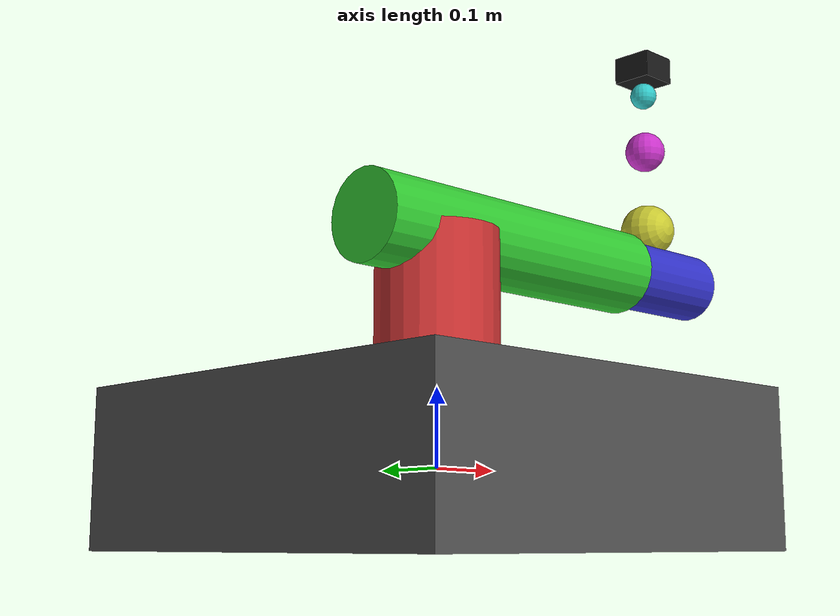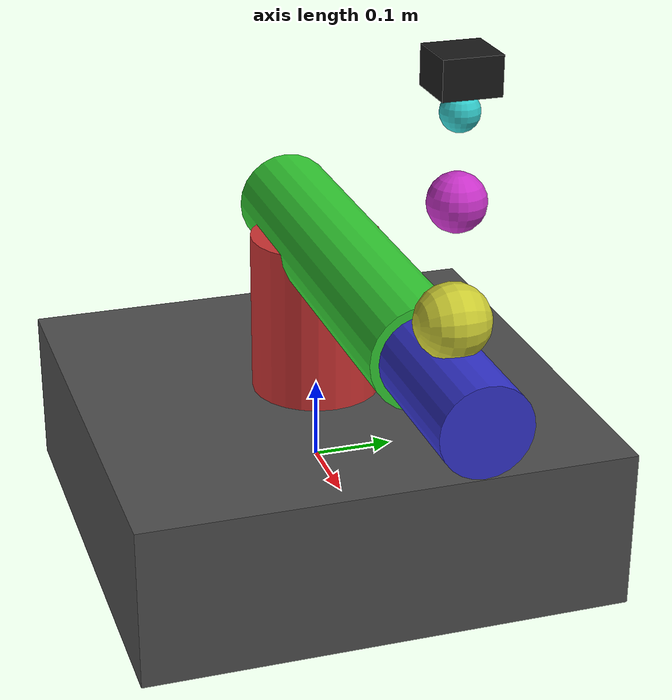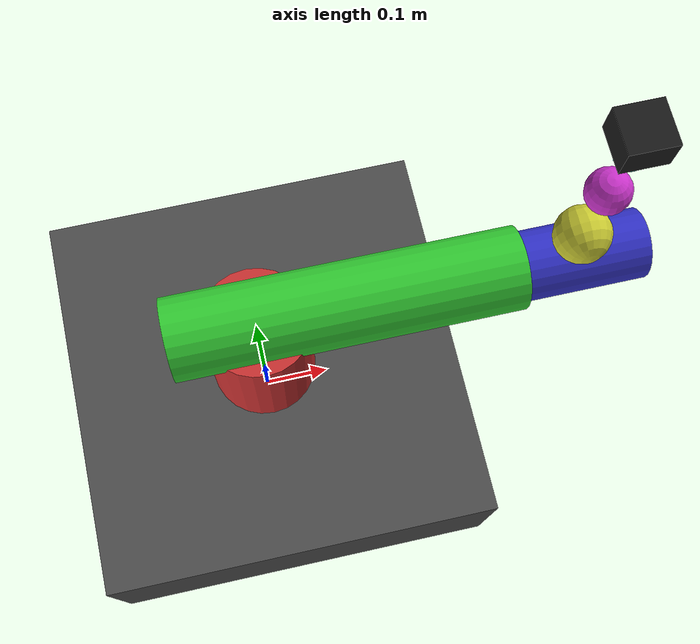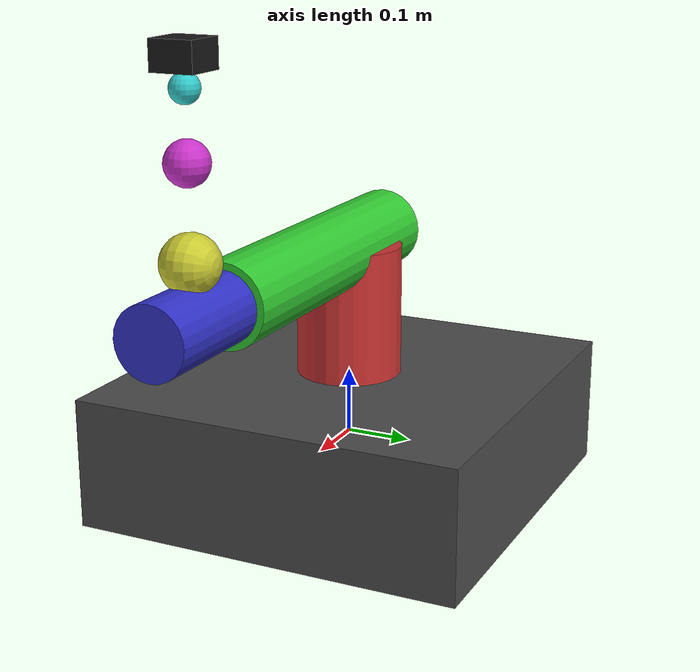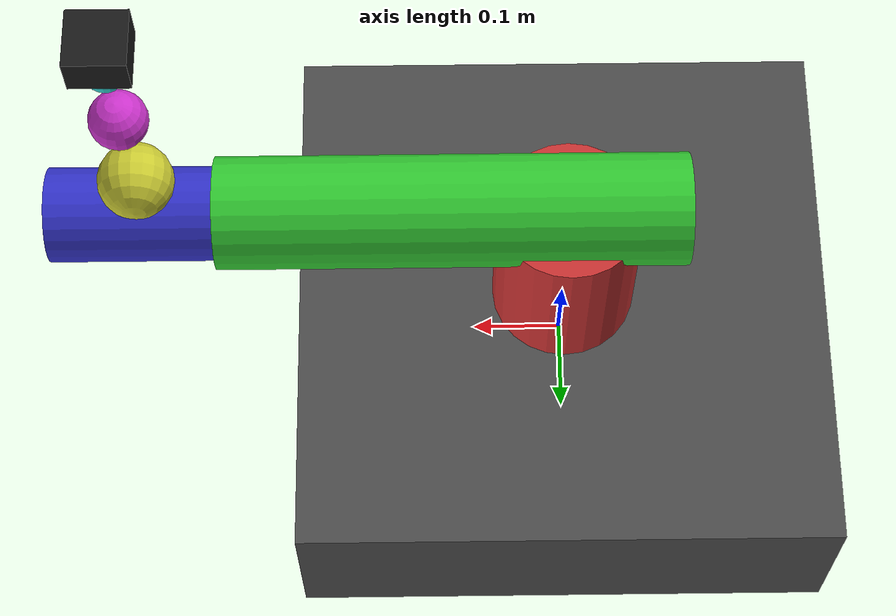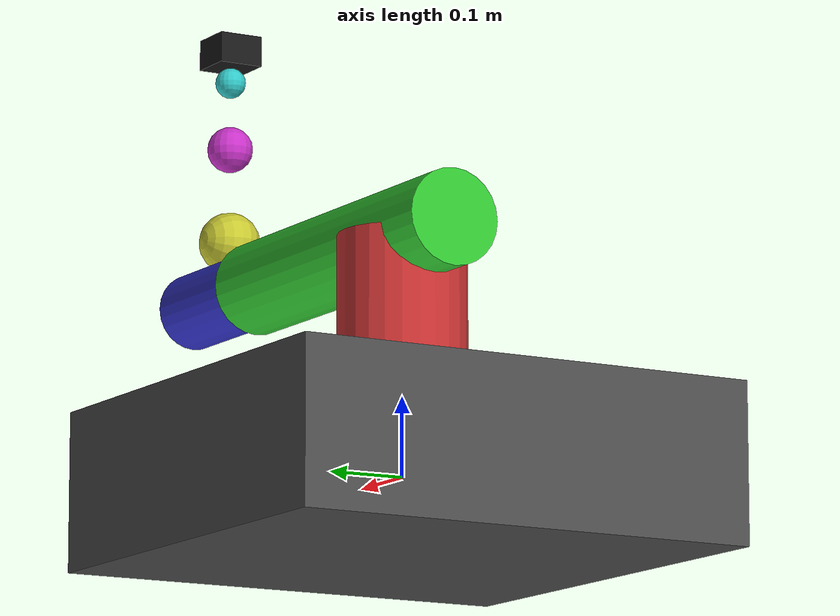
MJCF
<?xml version="1.0" ?>
<mujoco model="puma560">
  <compiler angle="degree" coordinate="local" inertiafromgeom="true"/>
  <option gravity="0 0 0" integrator="RK4" timestep="0.01"/>

  <default>
    <joint armature="0.1" damping="0.1" limited="true"/>
    <geom contype="0" conaffinity="0" type="cylinder" size="0.05 0.02" rgba="0.7 0.7 0.7 1"/>
  </default>

  <worldbody>
    <!-- Base -->
    <body name="base" pos="0 0 0">
      <geom type="box" size="0.3 0.3 0.1" rgba="0.3 0.3 0.3 1"/>
      <body name="link1" pos="0 0 0.1">
        <joint name="joint1" type="hinge" pos="0 0 0" axis="0 0 1" range="-180 180"/>
        <geom type="cylinder" size="0.08 0.1" rgba="0.8 0.2 0.2 1" pos="0 0 0.1"/>

        <!-- Link 2: α=-90°, a=0, d=0 -->
        <body name="link2" pos="0 0 0.2">
          <joint name="joint2" type="hinge" pos="0 0 0" axis="0 1 0" range="-90 90"/>
          <geom type="cylinder" size="0.06 0.25" rgba="0.2 0.8 0.2 1" pos="0.125 0 0" euler="0 90 0"/>

          <!-- Link 3: α=0°, a=a2, d=0 -->
          <body name="link3" pos="0.25 0 0">
            <joint name="joint3" type="hinge" pos="0 0 0" axis="0 1 0" range="-90 90"/>
            <geom type="cylinder" size="0.05 0.2" rgba="0.2 0.2 0.8 1" pos="0.1 0 0" euler="0 90 0"/>

            <!-- Link 4: α=-90°, a=a3, d=d3 -->
            <body name="link4" pos="0.2 0 0">
              <joint name="joint4" type="hinge" pos="0 0 0" axis="1 0 0" range="-180 180"/>
              <geom type="sphere" size="0.04" rgba="0.8 0.8 0.2 1" pos="0 0 0.075" euler="90 0 0"/>

              <!-- Link 5: α=90°, a=0, d=d4 -->
              <body name="link5" pos="0 0 0.15">
                <joint name="joint5" type="hinge" pos="0 0 0" axis="0 1 0" range="-90 90"/>
                <geom type="sphere" size="0.03" rgba="0.8 0.2 0.8 1" pos="0 0 0.05"/>

                <!-- Link 6: α=-90°, a=0, d=0 -->
                <body name="link6" pos="0 0 0.1">
                  <joint name="joint6" type="hinge" pos="0 0 0" axis="1 0 0" range="-180 180"/>
                  <geom type="sphere" size="0.02" rgba="0.2 0.8 0.8 1" pos="0 0 0.04"/>

                  <!-- End effector -->
                  <body name="end_effector" pos="0 0 0.08">
                    <geom type="box" size="0.03 0.03 0.02" rgba="0.1 0.1 0.1 1"/>
                  </body>
                </body>
              </body>
            </body>
          </body>
        </body>
      </body>
    </body>
  </worldbody>

  <actuator>
    <motor name="motor1" joint="joint1" gear="100"/>
    <motor name="motor2" joint="joint2" gear="100"/>
    <motor name="motor3" joint="joint3" gear="100"/>
    <motor name="motor4" joint="joint4" gear="50"/>
    <motor name="motor5" joint="joint5" gear="50"/>
    <motor name="motor6" joint="joint6" gear="50"/>
  </actuator>
</mujoco>
